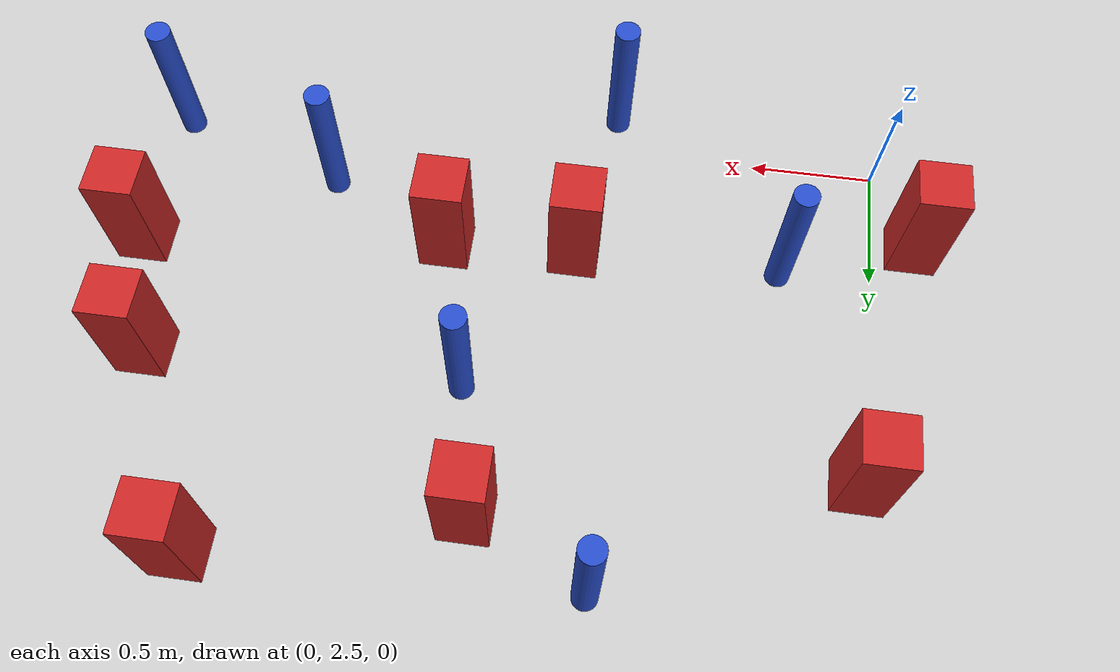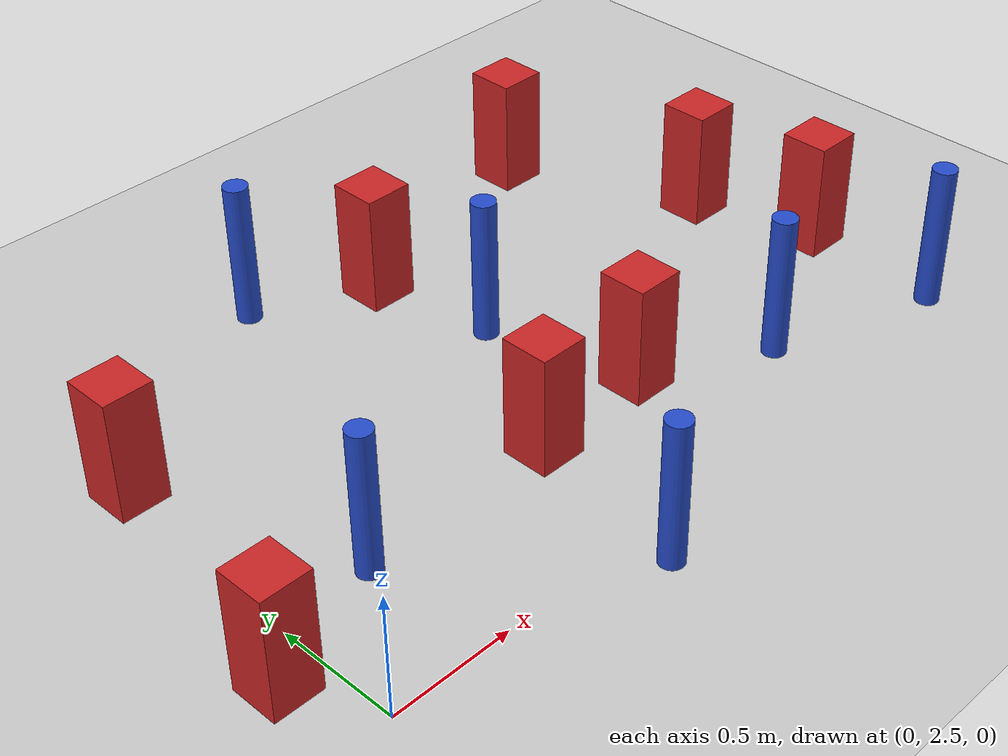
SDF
<sdf version="1.6">
 <world name="default">
  <model name="ground_plane">
   <static>1</static>
   <link name="link">
    <collision name="collision">
     <geometry><plane><normal>0 0 1</normal><size>100 100</size></plane></geometry>
     <surface><friction><ode><mu>100</mu><mu2>50</mu2></ode></friction></surface>
    </collision>
    <visual name="visual">
     <cast_shadows>0</cast_shadows>
     <geometry><plane><normal>0 0 1</normal><size>100 100</size></plane></geometry>
     <material>
      <ambient>1.0 1.0 1.0 1.0</ambient>
      <diffuse>0.8 0.8 0.8 1.0</diffuse>
      <specular>0.01 0.01 0.01 1.000000</specular>
     </material>
    </visual>
   </link>
  </model>
  <model name="pole_obstacle17">
   <static>true</static>
   <pose>1.5737481239 3.690412965 2.88873142074e-08 -9.90536689791e-09 4.6021994899e-07 -1.20965994959e-07</pose>
   <link name="link">
    <pose>0 0 0.3 0 -0 0</pose>
    <inertial>
     <mass>1</mass>
     <inertia><ixx>0.145833</ixx><ixy>0</ixy><ixz>0</ixz><iyy>0.145833</iyy><iyz>0</iyz><izz>0.125</izz></inertia>
    </inertial>
    <collision name="collision">
     <geometry><cylinder><radius>0.05</radius><length>.6</length></cylinder></geometry>
    </collision>
    <visual name="visual">
     <geometry><cylinder><radius>0.05</radius><length>.6</length></cylinder></geometry>
     <material>
      <script><name>Gazebo/Blue</name><uri>file://media/materials/scripts/gazebo.material</uri></script>
     </material>
    </visual>
   </link>
  </model>
  <model name="square_post_obstacle16">
   <static>true</static>
   <pose>-0.161220654232 2.8316874739 8.22691968438e-08 7.2212513382e-06 -7.54495500217e-07 2.29674213826e-05</pose>
   <link name="link">
    <pose>0 0 0.25 0 -0 0</pose>
    <inertial>
     <mass>100</mass>
     <inertia>
      <ixx>0.166667</ixx>
      <ixy>0</ixy>
      <ixz>0</ixz>
      <iyy>0.166667</iyy>
      <iyz>0</iyz>
      <izz>0.166667</izz>
     </inertia>
    </inertial>
    <collision name="collision"><geometry><box><size>.2 .2 .5</size></box></geometry></collision>
    <visual name="visual">
     <geometry><box><size>.2 .2 .5</size></box></geometry>
     <material>
      <script><name>Gazebo/Red</name><uri>file://media/materials/scripts/gazebo.material</uri></script>
     </material>
    </visual>
   </link>
  </model>
  <model name="pole_obstacle48">
   <static>true</static>
   <pose>1.00786192687 4.43440262708 2.88873142074e-08 -9.90536689905e-09 4.60219948988e-07 -1.20965994961e-07</pose>
   <link name="link">
    <pose>0 0 0.3 0 -0 0</pose>
    <inertial>
     <mass>1</mass>
     <inertia><ixx>0.145833</ixx><ixy>0</ixy><ixz>0</ixz><iyy>0.145833</iyy><iyz>0</iyz><izz>0.125</izz></inertia>
    </inertial>
    <collision name="collision">
     <geometry><cylinder><radius>0.05</radius><length>.6</length></cylinder></geometry>
    </collision>
    <visual name="visual">
     <geometry><cylinder><radius>0.05</radius><length>.6</length></cylinder></geometry>
     <material>
      <script><name>Gazebo/Blue</name><uri>file://media/materials/scripts/gazebo.material</uri></script>
     </material>
    </visual>
   </link>
  </model>
  <model name="pole_obstacle57">
   <static>true</static>
   <pose>2.94566683293 2.59472105093 2.88873142074e-08 -9.90536690232e-09 4.6021994898e-07 -1.20965994968e-07</pose>
   <link name="link">
    <pose>0 0 0.3 0 -0 0</pose>
    <inertial>
     <mass>1</mass>
     <inertia><ixx>0.145833</ixx><ixy>0</ixy><ixz>0</ixz><iyy>0.145833</iyy><iyz>0</iyz><izz>0.125</izz></inertia>
    </inertial>
    <collision name="collision">
     <geometry><cylinder><radius>0.05</radius><length>.6</length></cylinder></geometry>
    </collision>
    <visual name="visual">
     <geometry><cylinder><radius>0.05</radius><length>.6</length></cylinder></geometry>
     <material>
      <script><name>Gazebo/Blue</name><uri>file://media/materials/scripts/gazebo.material</uri></script>
     </material>
    </visual>
   </link>
  </model>
  <model name="pole_obstacle86">
   <static>true</static>
   <pose>0.377105399158 3.02284715716 2.88873142074e-08 -9.90536689663e-09 4.60219948993e-07 -1.20965994959e-07</pose>
   <link name="link">
    <pose>0 0 0.3 0 -0 0</pose>
    <inertial>
     <mass>1</mass>
     <inertia><ixx>0.145833</ixx><ixy>0</ixy><ixz>0</ixz><iyy>0.145833</iyy><iyz>0</iyz><izz>0.125</izz></inertia>
    </inertial>
    <collision name="collision">
     <geometry><cylinder><radius>0.05</radius><length>.6</length></cylinder></geometry>
    </collision>
    <visual name="visual">
     <geometry><cylinder><radius>0.05</radius><length>.6</length></cylinder></geometry>
     <material>
      <script><name>Gazebo/Blue</name><uri>file://media/materials/scripts/gazebo.material</uri></script>
     </material>
    </visual>
   </link>
  </model>
  <model name="pole_obstacle89">
   <static>true</static>
   <pose>1.09760732458 2.33933812099 2.88873142074e-08 -9.90536689791e-09 4.6021994899e-07 -1.20965994959e-07</pose>
   <link name="link">
    <pose>0 0 0.3 0 -0 0</pose>
    <inertial>
     <mass>1</mass>
     <inertia><ixx>0.145833</ixx><ixy>0</ixy><ixz>0</ixz><iyy>0.145833</iyy><iyz>0</iyz><izz>0.125</izz></inertia>
    </inertial>
    <collision name="collision">
     <geometry><cylinder><radius>0.05</radius><length>.6</length></cylinder></geometry>
    </collision>
    <visual name="visual">
     <geometry><cylinder><radius>0.05</radius><length>.6</length></cylinder></geometry>
     <material>
      <script><name>Gazebo/Blue</name><uri>file://media/materials/scripts/gazebo.material</uri></script>
     </material>
    </visual>
   </link>
  </model>
  <model name="square_post_obstacle89">
   <static>true</static>
   <pose>2.47188189758 4.46814022276 8.22691968438e-08 7.2212513382e-06 -7.54495500217e-07 2.29674213826e-05</pose>
   <link name="link">
    <pose>0 0 0.25 0 -0 0</pose>
    <inertial>
     <mass>100</mass>
     <inertia>
      <ixx>0.166667</ixx>
      <ixy>0</ixy>
      <ixz>0</ixz>
      <iyy>0.166667</iyy>
      <iyz>0</iyz>
      <izz>0.166667</izz>
     </inertia>
    </inertial>
    <collision name="collision"><geometry><box><size>.2 .2 .5</size></box></geometry></collision>
    <visual name="visual">
     <geometry><box><size>.2 .2 .5</size></box></geometry>
     <material>
      <script><name>Gazebo/Red</name><uri>file://media/materials/scripts/gazebo.material</uri></script>
     </material>
    </visual>
   </link>
  </model>
  <model name="square_post_obstacle91">
   <static>true</static>
   <pose>1.73781882217 3.06236583662 8.22691968438e-08 7.2212513382e-06 -7.54495500217e-07 2.29674213826e-05</pose>
   <link name="link">
    <pose>0 0 0.25 0 -0 0</pose>
    <inertial>
     <mass>100</mass>
     <inertia>
      <ixx>0.166667</ixx>
      <ixy>0</ixy>
      <ixz>0</ixz>
      <iyy>0.166667</iyy>
      <iyz>0</iyz>
      <izz>0.166667</izz>
     </inertia>
    </inertial>
    <collision name="collision"><geometry><box><size>.2 .2 .5</size></box></geometry></collision>
    <visual name="visual">
     <geometry><box><size>.2 .2 .5</size></box></geometry>
     <material>
      <script><name>Gazebo/Red</name><uri>file://media/materials/scripts/gazebo.material</uri></script>
     </material>
    </visual>
   </link>
  </model>
  <model name="square_post_obstacle92">
   <static>true</static>
   <pose>0.0524092540344 3.89401540763 8.22691968438e-08 7.2212513382e-06 -7.54495500217e-07 2.29674213826e-05</pose>
   <link name="link">
    <pose>0 0 0.25 0 -0 0</pose>
    <inertial>
     <mass>100</mass>
     <inertia>
      <ixx>0.166667</ixx>
      <ixy>0</ixy>
      <ixz>0</ixz>
      <iyy>0.166667</iyy>
      <iyz>0</iyz>
      <izz>0.166667</izz>
     </inertia>
    </inertial>
    <collision name="collision"><geometry><box><size>.2 .2 .5</size></box></geometry></collision>
    <visual name="visual">
     <geometry><box><size>.2 .2 .5</size></box></geometry>
     <material>
      <script><name>Gazebo/Red</name><uri>file://media/materials/scripts/gazebo.material</uri></script>
     </material>
    </visual>
   </link>
  </model>
  <model name="square_post_obstacle121">
   <static>true</static>
   <pose>2.83057806169 3.70297941434 8.22691968438e-08 7.2212513382e-06 -7.54495500217e-07 2.29674213826e-05</pose>
   <link name="link">
    <pose>0 0 0.25 0 -0 0</pose>
    <inertial>
     <mass>100</mass>
     <inertia>
      <ixx>0.166667</ixx>
      <ixy>0</ixy>
      <ixz>0</ixz>
      <iyy>0.166667</iyy>
      <iyz>0</iyz>
      <izz>0.166667</izz>
     </inertia>
    </inertial>
    <collision name="collision"><geometry><box><size>.2 .2 .5</size></box></geometry></collision>
    <visual name="visual">
     <geometry><box><size>.2 .2 .5</size></box></geometry>
     <material>
      <script><name>Gazebo/Red</name><uri>file://media/materials/scripts/gazebo.material</uri></script>
     </material>
    </visual>
   </link>
  </model>
  <model name="square_post_obstacle168">
   <static>true</static>
   <pose>2.97391117099 3.19697348055 8.22691968438e-08 7.2212513382e-06 -7.54495500217e-07 2.29674213826e-05</pose>
   <link name="link">
    <pose>0 0 0.25 0 -0 0</pose>
    <inertial>
     <mass>100</mass>
     <inertia>
      <ixx>0.166667</ixx>
      <ixy>0</ixy>
      <ixz>0</ixz>
      <iyy>0.166667</iyy>
      <iyz>0</iyz>
      <izz>0.166667</izz>
     </inertia>
    </inertial>
    <collision name="collision"><geometry><box><size>.2 .2 .5</size></box></geometry></collision>
    <visual name="visual">
     <geometry><box><size>.2 .2 .5</size></box></geometry>
     <material>
      <script><name>Gazebo/Red</name><uri>file://media/materials/scripts/gazebo.material</uri></script>
     </material>
    </visual>
   </link>
  </model>
  <model name="pole_obstacle184">
   <static>true</static>
   <pose>2.25234178558 2.81792937629 2.88873142074e-08 -9.90536690232e-09 4.6021994898e-07 -1.20965994968e-07</pose>
   <link name="link">
    <pose>0 0 0.3 0 -0 0</pose>
    <inertial>
     <mass>1</mass>
     <inertia><ixx>0.145833</ixx><ixy>0</ixy><ixz>0</ixz><iyy>0.145833</iyy><iyz>0</iyz><izz>0.125</izz></inertia>
    </inertial>
    <collision name="collision">
     <geometry><cylinder><radius>0.05</radius><length>.6</length></cylinder></geometry>
    </collision>
    <visual name="visual">
     <geometry><cylinder><radius>0.05</radius><length>.6</length></cylinder></geometry>
     <material>
      <script><name>Gazebo/Blue</name><uri>file://media/materials/scripts/gazebo.material</uri></script>
     </material>
    </visual>
   </link>
  </model>
  <model name="square_post_obstacle188">
   <static>true</static>
   <pose>1.21135377761 3.03280539431 8.22691968438e-08 7.2212513382e-06 -7.54495500217e-07 2.29674213826e-05</pose>
   <link name="link">
    <pose>0 0 0.25 0 -0 0</pose>
    <inertial>
     <mass>100</mass>
     <inertia>
      <ixx>0.166667</ixx>
      <ixy>0</ixy>
      <ixz>0</ixz>
      <iyy>0.166667</iyy>
      <iyz>0</iyz>
      <izz>0.166667</izz>
     </inertia>
    </inertial>
    <collision name="collision"><geometry><box><size>.2 .2 .5</size></box></geometry></collision>
    <visual name="visual">
     <geometry><box><size>.2 .2 .5</size></box></geometry>
     <material>
      <script><name>Gazebo/Red</name><uri>file://media/materials/scripts/gazebo.material</uri></script>
     </material>
    </visual>
   </link>
  </model>
  <model name="square_post_obstacle234">
   <static>true</static>
   <pose>1.47124003262 4.20101996466 8.22691968438e-08 7.2212513382e-06 -7.54495500217e-07 2.29674213826e-05</pose>
   <link name="link">
    <pose>0 0 0.25 0 -0 0</pose>
    <inertial>
     <mass>100</mass>
     <inertia>
      <ixx>0.166667</ixx>
      <ixy>0</ixy>
      <ixz>0</ixz>
      <iyy>0.166667</iyy>
      <iyz>0</iyz>
      <izz>0.166667</izz>
     </inertia>
    </inertial>
    <collision name="collision"><geometry><box><size>.2 .2 .5</size></box></geometry></collision>
    <visual name="visual">
     <geometry><box><size>.2 .2 .5</size></box></geometry>
     <material>
      <script><name>Gazebo/Red</name><uri>file://media/materials/scripts/gazebo.material</uri></script>
     </material>
    </visual>
   </link>
  </model>
 </world>
</sdf>
